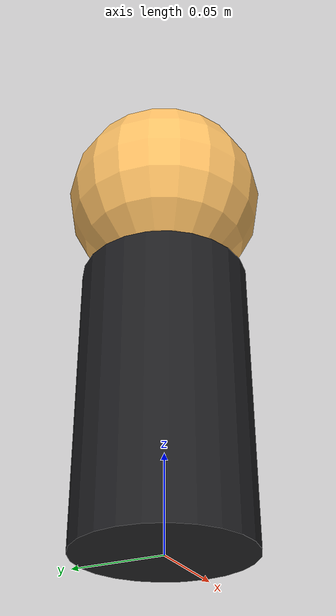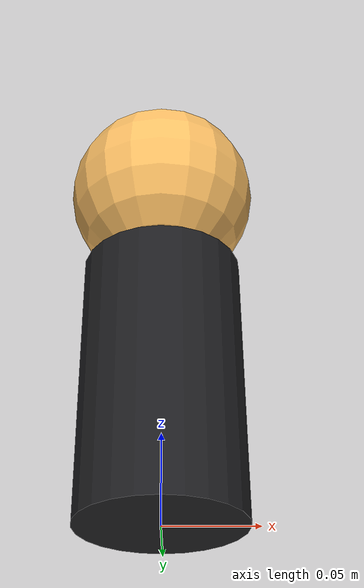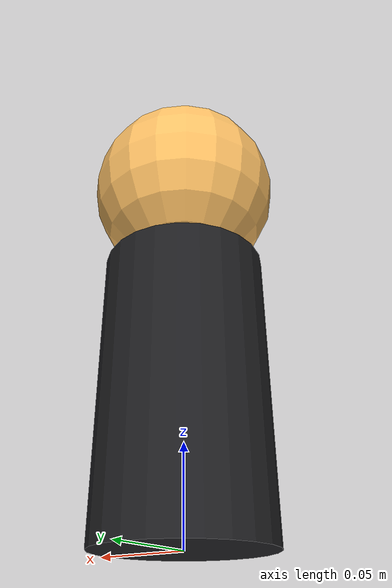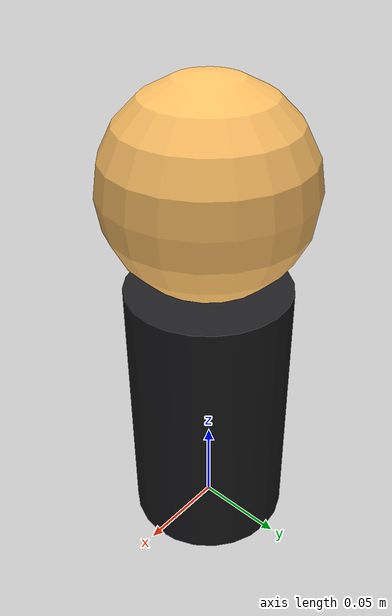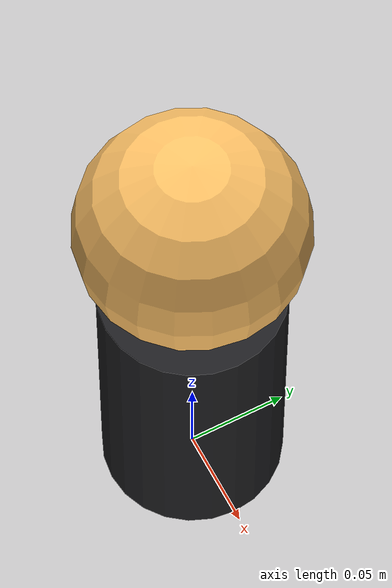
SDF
<?xml version="1.0"?>

<sdf version="1.6">
  <model name="light_source">
    <static>true</static>

    <link name="body">
      <pose>0 0 0 0 0 0</pose>

      <visual name="base_visual">
        <pose>0 0 0.0762 0 0 0</pose>
        <geometry>
          <cylinder>
            <radius>0.045</radius>
            <length>0.1524</length>
          </cylinder>
        </geometry>
        <material>
          <ambient>0.05 0.05 0.055 1</ambient>
          <diffuse>0.12 0.12 0.13 1</diffuse>
          <specular>0.35 0.35 0.35 1</specular>
        </material>
      </visual>

      <visual name="globe_visual">
        <pose>0 0 0.2074 0 0 0</pose>
        <cast_shadows>false</cast_shadows>
        <geometry>
          <sphere>
            <radius>0.055</radius>
          </sphere>
        </geometry>
        <material>
          <ambient>1.0 0.74 0.36 1</ambient>
          <diffuse>1.0 0.76 0.40 1</diffuse>
          <specular>0.4 0.28 0.12 1</specular>
          <emissive>1.0 0.58 0.18 1</emissive>
        </material>
      </visual>

      <light type="point" name="warm_globe_light">
        <pose>0 0 0.2074 0 0 0</pose>
        <diffuse>1.0 0.74 0.42 1</diffuse>
        <specular>0.25 0.18 0.10 1</specular>
        <attenuation>
          <range>6.0</range>
          <constant>0.8</constant>
          <linear>0.08</linear>
          <quadratic>0.02</quadratic>
        </attenuation>
        <cast_shadows>false</cast_shadows>
      </light>
    </link>
  </model>
</sdf>
